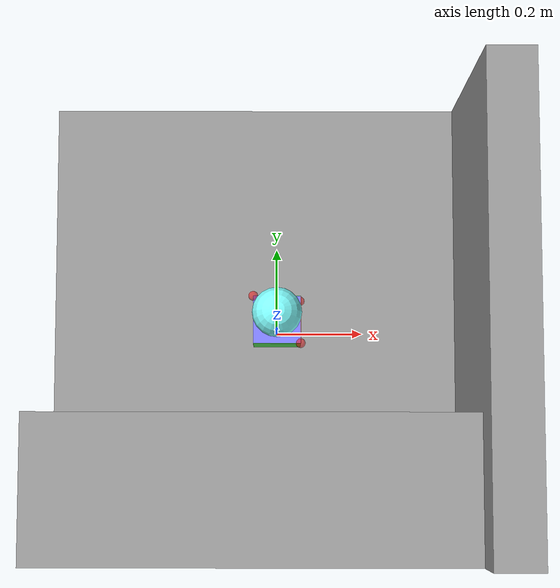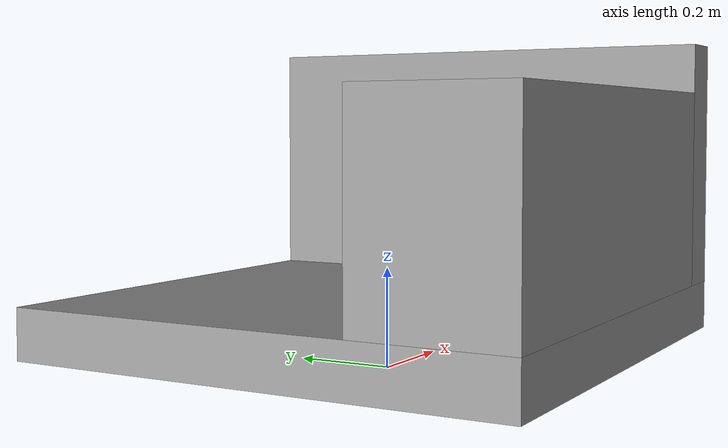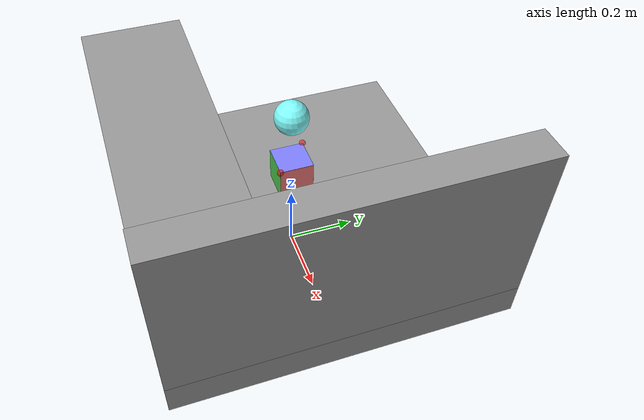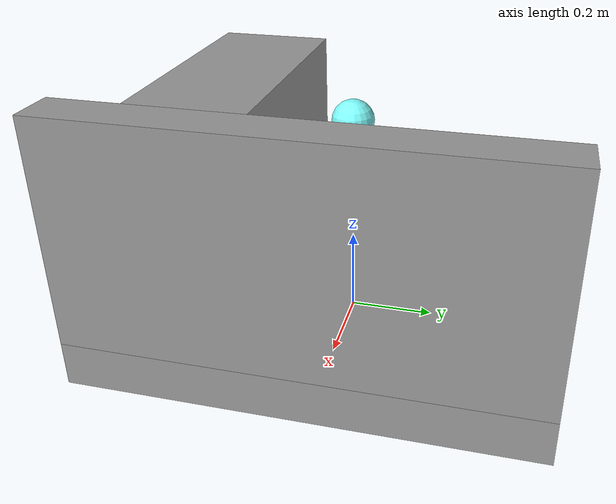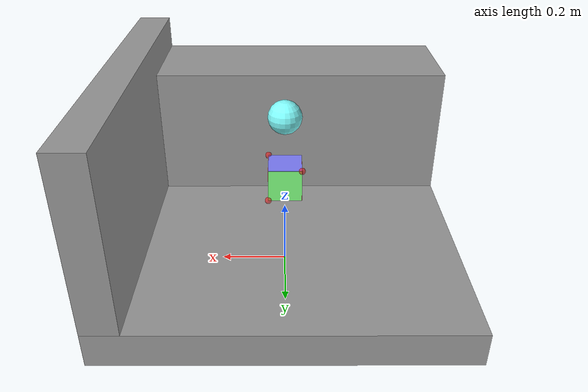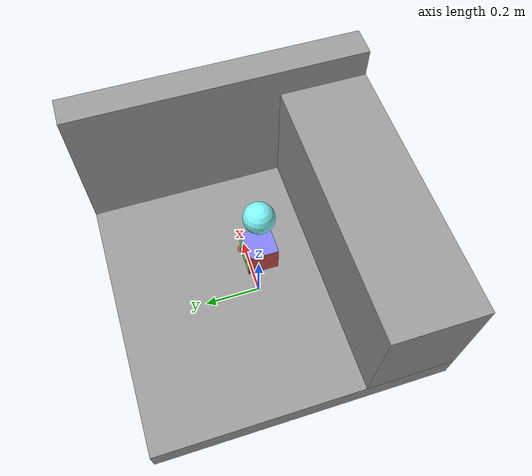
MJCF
<mujoco model="ry_convert">
  <size njmax="500" nconmax="500"/>
  <asset />
  <visual>
    <headlight ambient="0.4 0.4 0.4" diffuse="0.8 0.8 0.8" specular="0.1 0.1 0.1" />
    <map znear="0.01" />
    <global offwidth="1200" offheight="800" />
  </visual>
  <default>
    <default class="ryjoint">
      <position forcerange="-150 150" kp="1000" kv="10" ctrlrange="-10 10" />
    </default>
    <default class="geom_fric">
      <geom friction=".8 0.1 0.1" />
    </default>
  </default>
  <actuator>
    <position name="l_joint1" joint="l_joint1" class="ryjoint" />
    <position name="l_joint2" joint="l_joint2" class="ryjoint" />
    <position name="l_fing" joint="l_fing" class="ryjoint" />
    <position name="r_joint1" joint="r_joint1" class="ryjoint" />
    <position name="r_joint2" joint="r_joint2" class="ryjoint" />
    <position name="r_fing" joint="r_fing" class="ryjoint" />
  </actuator>
  <worldbody>
    <camera name="fixed_cam" pos="-1.104 1.275 0.847" xyaxes="-0.728 -0.686 0.000 0.225 -0.238 0.945"/>
    <light pos="0 10 10.5" dir="0 -1 -1" directional="true" />

    <body name="l_base" pos="0.0 0.0 0.5">
      <body name="l_fake">
        <body name="l_joint1">
          <joint name="l_joint1" damping="0.1" type="slide" axis="1 0 0" />
          <inertial pos="0 0 0" mass="0.01" diaginertia="1e-5 1e-5 1e-5" />
          <body name="l_joint2">
            <joint name="l_joint2" damping="0.1" type="slide" axis="0 1 0" />
            <inertial pos="0 0 0" mass="0.01" diaginertia="1e-5 1e-5 1e-5" />
            <body name="l_fing">
              <joint name="l_fing" damping="0.1" type="slide" axis="0 0 1" />
              <geom name="l_fing" type="sphere" size="0.05" rgba="0.5 1.0 1.0 1" mass="0.1" class="geom_fric" />
            </body>
          </body>
        </body>
      </body>
    </body>
    <body name="r_base" pos="0.0 0.0 0.5">
      <body name="r_fake">
        <body name="r_joint1">
          <joint name="r_joint1" damping="0.1" type="slide" axis="1 0 0" />
          <inertial pos="0 0 0" mass="0.01" diaginertia="1e-5 1e-5 1e-5" />
          <body name="r_joint2">
            <joint name="r_joint2" damping="0.1" type="slide" axis="0 1 0" />
            <inertial pos="0 0 0" mass="0.01" diaginertia="1e-5 1e-5 1e-5" />
            <body name="r_fing">
              <joint name="r_fing" damping="0.1" type="slide" axis="0 0 1" />
              <geom name="r_fing" type="sphere" size="0.05" rgba="0.5 1.0 1.0 1" mass="0.1" class="geom_fric" />
            </body>
          </body>
        </body>
      </body>
    </body>
    <body name="table" pos="0.0 0.0 0.1">
      <geom name="table" type="box" size="0.5 0.5 0.05" rgba="0.6 0.6 0.6 1.0" class="geom_fric" />
      <body name="wall" pos="0.45 0.0 0.3">
        <geom name="wall" type="box" size="0.05 0.5 0.25" rgba="0.6 0.6 0.6 1.0" class="geom_fric" />
      </body>
      <body name="box" pos="-0.05 -0.35 0.25">
        <geom name="box" type="box" size="0.45 0.15 0.2" rgba="0.6 0.6 0.6 1.0" class="geom_fric" />
      </body>
    </body>
    <body name="obj_base" />
    <body name="obj" pos="0.0 0.0 0.3">
      <freejoint />
      <geom name="obj" type="box" size="0.05 0.05 0.05" rgba="1.0 0.5 0.0 1" mass="0.2" class="geom_fric" />
      <body name="side1" pos="0.05 0.0 0.0">
        <geom type="box" size="0.0005 0.05 0.05" rgba="1.0 0.5 0.5 1" class="geom_fric" />
      </body>
      <body name="side2" pos="-0.05 0.0 0.0">
        <geom type="box" size="0.0005 0.05 0.05" rgba="0.8 0.3 0.3 1" class="geom_fric" />
      </body>
      <body name="side3" pos="0.0 0.05 0.0">
        <geom type="box" size="0.05 0.0005 0.05" rgba="0.5 1.0 0.5 1" class="geom_fric" />
      </body>
      <body name="side4" pos="0.0 -0.05 0.0">
        <geom type="box" size="0.05 0.0005 0.05" rgba="0.3 0.8 0.3 1" class="geom_fric" />
      </body>
      <body name="side5" pos="0.0 0.0 0.05">
        <geom type="box" size="0.05 0.05 0.0005" rgba="0.5 0.5 1.0 1" class="geom_fric" />
      </body>
      <body name="side6" pos="0.0 0.0 -0.05">
        <geom type="box" size="0.05 0.05 0.0005" rgba="0.3 0.3 0.8 1" class="geom_fric" />
      </body>

      <geom name="box_marker_0" type="sphere" pos="-0.05 0.05 0.05"
            size="0.01"
            rgba="1 0 0 0.5"
            contype="0" conaffinity="0" density="0"/>

      <geom name="box_marker_1" type="sphere" pos="0.05 -0.05 0.05"
            size="0.01"
            rgba="1 0 0 0.5"
            contype="0" conaffinity="0" density="0"/>

      <geom name="box_marker_2" type="sphere" pos="0.05 0.05 -0.05"
            size="0.01"
            rgba="1 0 0 0.5"
            contype="0" conaffinity="0" density="0"/>
    </body>
    <body name="camera_init" pos="-0.285441 1.5997 0.7643" quat="0.05155251630358149 -0.06594522085530172 0.7850692482796453 -0.6137261940920781" />
    <camera name="cam0" pos="-0.992 1.956 1.209" xyaxes="-0.886 -0.463 -0.000 0.167 -0.320 0.933"/>
  </worldbody>
</mujoco>
